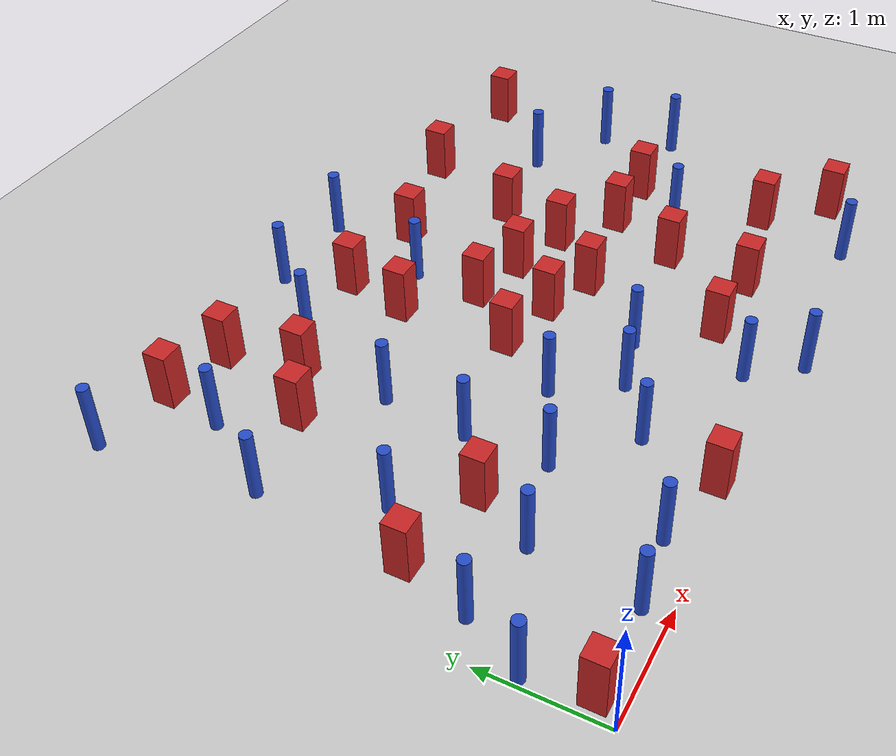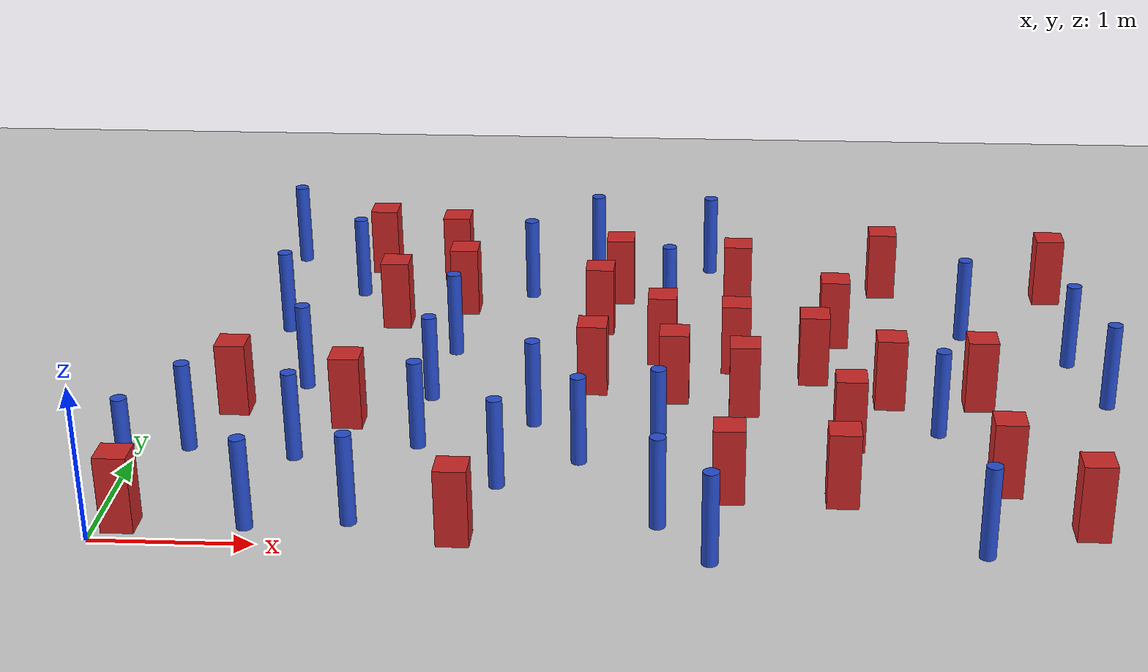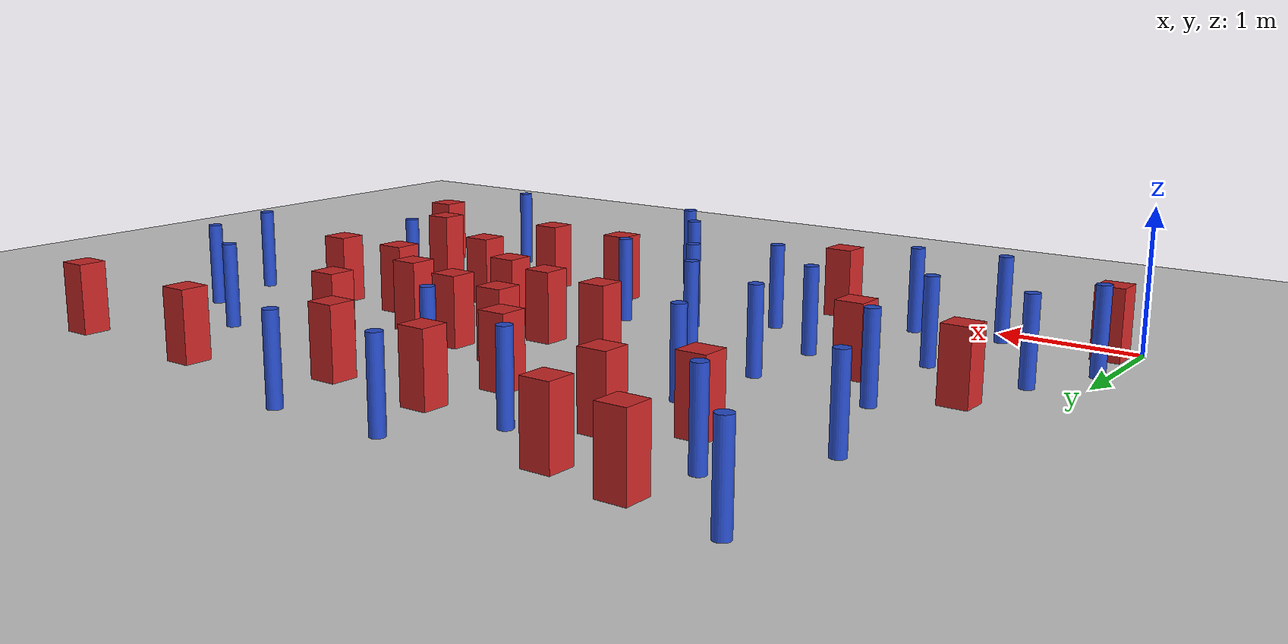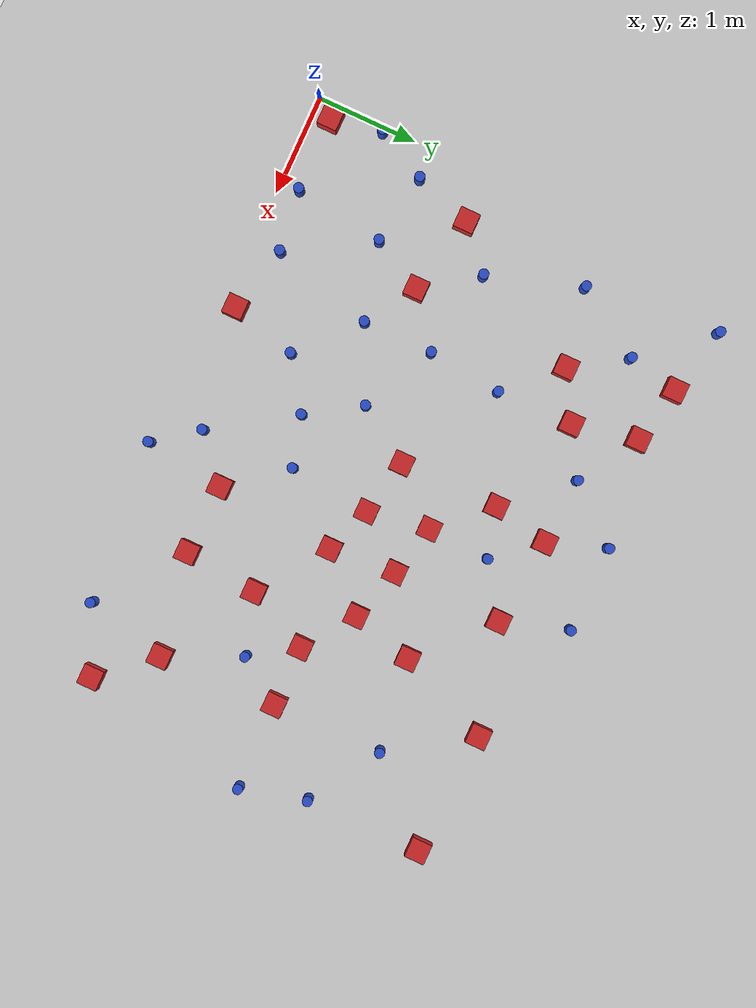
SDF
<sdf version="1.6">
 <world name="default">
  <model name="ground_plane">
   <static>1</static>
   <link name="link">
    <collision name="collision">
     <geometry><plane><normal>0 0 1</normal><size>100 100</size></plane></geometry>
     <surface><friction><ode><mu>100</mu><mu2>50</mu2></ode></friction></surface>
    </collision>
    <visual name="visual">
     <cast_shadows>0</cast_shadows>
     <geometry><plane><normal>0 0 1</normal><size>100 100</size></plane></geometry>
     <material>
      <ambient>1.0 1.0 1.0 1.0</ambient>
      <diffuse>0.8 0.8 0.8 1.0</diffuse>
      <specular>0.01 0.01 0.01 1.000000</specular>
     </material>
    </visual>
   </link>
  </model>
  <model name="pole_obstacle3">
   <static>true</static>
   <pose>1.85166575213 2.73156434735 -9.47619616065e-06 5.49618799737e-07 2.36310414062e-07 -1.55090534798e-07</pose>
   <link name="link">
    <pose>0 0 0.3 0 -0 0</pose>
    <inertial>
     <mass>1</mass>
     <inertia><ixx>0.145833</ixx><ixy>0</ixy><ixz>0</ixz><iyy>0.145833</iyy><iyz>0</iyz><izz>0.125</izz></inertia>
    </inertial>
    <collision name="collision">
     <geometry><cylinder><radius>0.05</radius><length>.6</length></cylinder></geometry>
    </collision>
    <visual name="visual">
     <geometry><cylinder><radius>0.05</radius><length>.6</length></cylinder></geometry>
     <material>
      <script><name>Gazebo/Blue</name><uri>file://media/materials/scripts/gazebo.material</uri></script>
     </material>
    </visual>
   </link>
  </model>
  <model name="pole_obstacle7">
   <static>true</static>
   <pose>3.62072664661 4.30841602605 -9.47619616065e-06 5.49618799738e-07 2.3631041406e-07 -1.55090534801e-07</pose>
   <link name="link">
    <pose>0 0 0.3 0 -0 0</pose>
    <inertial>
     <mass>1</mass>
     <inertia><ixx>0.145833</ixx><ixy>0</ixy><ixz>0</ixz><iyy>0.145833</iyy><iyz>0</iyz><izz>0.125</izz></inertia>
    </inertial>
    <collision name="collision">
     <geometry><cylinder><radius>0.05</radius><length>.6</length></cylinder></geometry>
    </collision>
    <visual name="visual">
     <geometry><cylinder><radius>0.05</radius><length>.6</length></cylinder></geometry>
     <material>
      <script><name>Gazebo/Blue</name><uri>file://media/materials/scripts/gazebo.material</uri></script>
     </material>
    </visual>
   </link>
  </model>
  <model name="pole_obstacle9">
   <static>true</static>
   <pose>5.43425817612 3.14929889037 -9.47619616065e-06 5.49618799738e-07 2.36310414051e-07 -1.55090534805e-07</pose>
   <link name="link">
    <pose>0 0 0.3 0 -0 0</pose>
    <inertial>
     <mass>1</mass>
     <inertia><ixx>0.145833</ixx><ixy>0</ixy><ixz>0</ixz><iyy>0.145833</iyy><iyz>0</iyz><izz>0.125</izz></inertia>
    </inertial>
    <collision name="collision">
     <geometry><cylinder><radius>0.05</radius><length>.6</length></cylinder></geometry>
    </collision>
    <visual name="visual">
     <geometry><cylinder><radius>0.05</radius><length>.6</length></cylinder></geometry>
     <material>
      <script><name>Gazebo/Blue</name><uri>file://media/materials/scripts/gazebo.material</uri></script>
     </material>
    </visual>
   </link>
  </model>
  <model name="pole_obstacle12">
   <static>true</static>
   <pose>0.89969291572 0.201560799494 -9.47619616065e-06 5.49618799737e-07 2.36310414064e-07 -1.55090534797e-07</pose>
   <link name="link">
    <pose>0 0 0.3 0 -0 0</pose>
    <inertial>
     <mass>1</mass>
     <inertia><ixx>0.145833</ixx><ixy>0</ixy><ixz>0</ixz><iyy>0.145833</iyy><iyz>0</iyz><izz>0.125</izz></inertia>
    </inertial>
    <collision name="collision">
     <geometry><cylinder><radius>0.05</radius><length>.6</length></cylinder></geometry>
    </collision>
    <visual name="visual">
     <geometry><cylinder><radius>0.05</radius><length>.6</length></cylinder></geometry>
     <material>
      <script><name>Gazebo/Blue</name><uri>file://media/materials/scripts/gazebo.material</uri></script>
     </material>
    </visual>
   </link>
  </model>
  <model name="pole_obstacle15">
   <static>true</static>
   <pose>5.29335730917 0.0635979002742 -9.47619616065e-06 5.49618799737e-07 2.36310414076e-07 -1.55090534791e-07</pose>
   <link name="link">
    <pose>0 0 0.3 0 -0 0</pose>
    <inertial>
     <mass>1</mass>
     <inertia><ixx>0.145833</ixx><ixy>0</ixy><ixz>0</ixz><iyy>0.145833</iyy><iyz>0</iyz><izz>0.125</izz></inertia>
    </inertial>
    <collision name="collision">
     <geometry><cylinder><radius>0.05</radius><length>.6</length></cylinder></geometry>
    </collision>
    <visual name="visual">
     <geometry><cylinder><radius>0.05</radius><length>.6</length></cylinder></geometry>
     <material>
      <script><name>Gazebo/Blue</name><uri>file://media/materials/scripts/gazebo.material</uri></script>
     </material>
    </visual>
   </link>
  </model>
  <model name="pole_obstacle16">
   <static>true</static>
   <pose>5.1453625678 1.60697496365 -9.47619616065e-06 5.49618799738e-07 2.36310414071e-07 -1.55090534796e-07</pose>
   <link name="link">
    <pose>0 0 0.3 0 -0 0</pose>
    <inertial>
     <mass>1</mass>
     <inertia><ixx>0.145833</ixx><ixy>0</ixy><ixz>0</ixz><iyy>0.145833</iyy><iyz>0</iyz><izz>0.125</izz></inertia>
    </inertial>
    <collision name="collision">
     <geometry><cylinder><radius>0.05</radius><length>.6</length></cylinder></geometry>
    </collision>
    <visual name="visual">
     <geometry><cylinder><radius>0.05</radius><length>.6</length></cylinder></geometry>
     <material>
      <script><name>Gazebo/Blue</name><uri>file://media/materials/scripts/gazebo.material</uri></script>
     </material>
    </visual>
   </link>
  </model>
  <model name="pole_obstacle24">
   <static>true</static>
   <pose>3.36074858885 0.331880408276 -9.47619616065e-06 5.49618799738e-07 2.36310414074e-07 -1.55090534794e-07</pose>
   <link name="link">
    <pose>0 0 0.3 0 -0 0</pose>
    <inertial>
     <mass>1</mass>
     <inertia><ixx>0.145833</ixx><ixy>0</ixy><ixz>0</ixz><iyy>0.145833</iyy><iyz>0</iyz><izz>0.125</izz></inertia>
    </inertial>
    <collision name="collision">
     <geometry><cylinder><radius>0.05</radius><length>.6</length></cylinder></geometry>
    </collision>
    <visual name="visual">
     <geometry><cylinder><radius>0.05</radius><length>.6</length></cylinder></geometry>
     <material>
      <script><name>Gazebo/Blue</name><uri>file://media/materials/scripts/gazebo.material</uri></script>
     </material>
    </visual>
   </link>
  </model>
  <model name="pole_obstacle42">
   <static>true</static>
   <pose>2.50089925545 1.64127641111 -9.47619616065e-06 5.49618799737e-07 2.36310414072e-07 -1.55090534793e-07</pose>
   <link name="link">
    <pose>0 0 0.3 0 -0 0</pose>
    <inertial>
     <mass>1</mass>
     <inertia><ixx>0.145833</ixx><ixy>0</ixy><ixz>0</ixz><iyy>0.145833</iyy><iyz>0</iyz><izz>0.125</izz></inertia>
    </inertial>
    <collision name="collision">
     <geometry><cylinder><radius>0.05</radius><length>.6</length></cylinder></geometry>
    </collision>
    <visual name="visual">
     <geometry><cylinder><radius>0.05</radius><length>.6</length></cylinder></geometry>
     <material>
      <script><name>Gazebo/Blue</name><uri>file://media/materials/scripts/gazebo.material</uri></script>
     </material>
    </visual>
   </link>
  </model>
  <model name="square_post_obstacle32">
   <static>true</static>
   <pose>0.502264745412 1.77467506402 -6.11067671241e-07 -5.50515727128e-06 -8.79689657224e-07 2.37013304536e-05</pose>
   <link name="link">
    <pose>0 0 0.25 0 -0 0</pose>
    <inertial>
     <mass>100</mass>
     <inertia>
      <ixx>0.166667</ixx>
      <ixy>0</ixy>
      <ixz>0</ixz>
      <iyy>0.166667</iyy>
      <iyz>0</iyz>
      <izz>0.166667</izz>
     </inertia>
    </inertial>
    <collision name="collision"><geometry><box><size>.2 .2 .5</size></box></geometry></collision>
    <visual name="visual">
     <geometry><box><size>.2 .2 .5</size></box></geometry>
     <material>
      <script><name>Gazebo/Red</name><uri>file://media/materials/scripts/gazebo.material</uri></script>
     </material>
    </visual>
   </link>
  </model>
  <model name="square_post_obstacle35">
   <static>true</static>
   <pose>3.88081174248 1.90441714512 -6.11067671241e-07 -5.50515727128e-06 -8.79689657224e-07 2.37013304536e-05</pose>
   <link name="link">
    <pose>0 0 0.25 0 -0 0</pose>
    <inertial>
     <mass>100</mass>
     <inertia>
      <ixx>0.166667</ixx>
      <ixy>0</ixy>
      <ixz>0</ixz>
      <iyy>0.166667</iyy>
      <iyz>0</iyz>
      <izz>0.166667</izz>
     </inertia>
    </inertial>
    <collision name="collision"><geometry><box><size>.2 .2 .5</size></box></geometry></collision>
    <visual name="visual">
     <geometry><box><size>.2 .2 .5</size></box></geometry>
     <material>
      <script><name>Gazebo/Red</name><uri>file://media/materials/scripts/gazebo.material</uri></script>
     </material>
    </visual>
   </link>
  </model>
  <model name="square_post_obstacle42">
   <static>true</static>
   <pose>1.70059387898 4.1363169118 -6.11067671241e-07 -5.50515727128e-06 -8.79689657224e-07 2.37013304536e-05</pose>
   <link name="link">
    <pose>0 0 0.25 0 -0 0</pose>
    <inertial>
     <mass>100</mass>
     <inertia>
      <ixx>0.166667</ixx>
      <ixy>0</ixy>
      <ixz>0</ixz>
      <iyy>0.166667</iyy>
      <iyz>0</iyz>
      <izz>0.166667</izz>
     </inertia>
    </inertial>
    <collision name="collision"><geometry><box><size>.2 .2 .5</size></box></geometry></collision>
    <visual name="visual">
     <geometry><box><size>.2 .2 .5</size></box></geometry>
     <material>
      <script><name>Gazebo/Red</name><uri>file://media/materials/scripts/gazebo.material</uri></script>
     </material>
    </visual>
   </link>
  </model>
  <model name="square_post_obstacle44">
   <static>true</static>
   <pose>6.12530218838 3.87353453013 -6.11067671241e-07 -5.50515727128e-06 -8.79689657224e-07 2.37013304536e-05</pose>
   <link name="link">
    <pose>0 0 0.25 0 -0 0</pose>
    <inertial>
     <mass>100</mass>
     <inertia>
      <ixx>0.166667</ixx>
      <ixy>0</ixy>
      <ixz>0</ixz>
      <iyy>0.166667</iyy>
      <iyz>0</iyz>
      <izz>0.166667</izz>
     </inertia>
    </inertial>
    <collision name="collision"><geometry><box><size>.2 .2 .5</size></box></geometry></collision>
    <visual name="visual">
     <geometry><box><size>.2 .2 .5</size></box></geometry>
     <material>
      <script><name>Gazebo/Red</name><uri>file://media/materials/scripts/gazebo.material</uri></script>
     </material>
    </visual>
   </link>
  </model>
  <model name="pole_obstacle64">
   <static>true</static>
   <pose>1.50956659682 0.284849848708 -9.47619616065e-06 5.49618799737e-07 2.36310414064e-07 -1.55090534799e-07</pose>
   <link name="link">
    <pose>0 0 0.3 0 -0 0</pose>
    <inertial>
     <mass>1</mass>
     <inertia><ixx>0.145833</ixx><ixy>0</ixy><ixz>0</ixz><iyy>0.145833</iyy><iyz>0</iyz><izz>0.125</izz></inertia>
    </inertial>
    <collision name="collision">
     <geometry><cylinder><radius>0.05</radius><length>.6</length></cylinder></geometry>
    </collision>
    <visual name="visual">
     <geometry><cylinder><radius>0.05</radius><length>.6</length></cylinder></geometry>
     <material>
      <script><name>Gazebo/Blue</name><uri>file://media/materials/scripts/gazebo.material</uri></script>
     </material>
    </visual>
   </link>
  </model>
  <model name="square_post_obstacle50">
   <static>true</static>
   <pose>3.40953994473 2.07450680071 -6.11067671241e-07 -5.50515727128e-06 -8.79689657224e-07 2.37013304536e-05</pose>
   <link name="link">
    <pose>0 0 0.25 0 -0 0</pose>
    <inertial>
     <mass>100</mass>
     <inertia>
      <ixx>0.166667</ixx>
      <ixy>0</ixy>
      <ixz>0</ixz>
      <iyy>0.166667</iyy>
      <iyz>0</iyz>
      <izz>0.166667</izz>
     </inertia>
    </inertial>
    <collision name="collision"><geometry><box><size>.2 .2 .5</size></box></geometry></collision>
    <visual name="visual">
     <geometry><box><size>.2 .2 .5</size></box></geometry>
     <material>
      <script><name>Gazebo/Red</name><uri>file://media/materials/scripts/gazebo.material</uri></script>
     </material>
    </visual>
   </link>
  </model>
  <model name="square_post_obstacle52">
   <static>true</static>
   <pose>1.36848044522 3.22194869639 -6.11067671241e-07 -5.50515727128e-06 -8.79689657224e-07 2.37013304536e-05</pose>
   <link name="link">
    <pose>0 0 0.25 0 -0 0</pose>
    <inertial>
     <mass>100</mass>
     <inertia>
      <ixx>0.166667</ixx>
      <ixy>0</ixy>
      <ixz>0</ixz>
      <iyy>0.166667</iyy>
      <iyz>0</iyz>
      <izz>0.166667</izz>
     </inertia>
    </inertial>
    <collision name="collision"><geometry><box><size>.2 .2 .5</size></box></geometry></collision>
    <visual name="visual">
     <geometry><box><size>.2 .2 .5</size></box></geometry>
     <material>
      <script><name>Gazebo/Red</name><uri>file://media/materials/scripts/gazebo.material</uri></script>
     </material>
    </visual>
   </link>
  </model>
  <model name="square_post_obstacle56">
   <static>true</static>
   <pose>4.90300308313 3.94071708463 -6.11067671241e-07 -5.50515727128e-06 -8.79689657224e-07 2.37013304536e-05</pose>
   <link name="link">
    <pose>0 0 0.25 0 -0 0</pose>
    <inertial>
     <mass>100</mass>
     <inertia>
      <ixx>0.166667</ixx>
      <ixy>0</ixy>
      <ixz>0</ixz>
      <iyy>0.166667</iyy>
      <iyz>0</iyz>
      <izz>0.166667</izz>
     </inertia>
    </inertial>
    <collision name="collision"><geometry><box><size>.2 .2 .5</size></box></geometry></collision>
    <visual name="visual">
     <geometry><box><size>.2 .2 .5</size></box></geometry>
     <material>
      <script><name>Gazebo/Red</name><uri>file://media/materials/scripts/gazebo.material</uri></script>
     </material>
    </visual>
   </link>
  </model>
  <model name="pole_obstacle71">
   <static>true</static>
   <pose>0.903866674011 2.13763635331 -9.47619616065e-06 5.49618799737e-07 2.36310414066e-07 -1.55090534797e-07</pose>
   <link name="link">
    <pose>0 0 0.3 0 -0 0</pose>
    <inertial>
     <mass>1</mass>
     <inertia><ixx>0.145833</ixx><ixy>0</ixy><ixz>0</ixz><iyy>0.145833</iyy><iyz>0</iyz><izz>0.125</izz></inertia>
    </inertial>
    <collision name="collision">
     <geometry><cylinder><radius>0.05</radius><length>.6</length></cylinder></geometry>
    </collision>
    <visual name="visual">
     <geometry><cylinder><radius>0.05</radius><length>.6</length></cylinder></geometry>
     <material>
      <script><name>Gazebo/Blue</name><uri>file://media/materials/scripts/gazebo.material</uri></script>
     </material>
    </visual>
   </link>
  </model>
  <model name="pole_obstacle72">
   <static>true</static>
   <pose>2.34691807548 0.785220670978 -9.47619616065e-06 5.49618799738e-07 2.36310414075e-07 -1.55090534793e-07</pose>
   <link name="link">
    <pose>0 0 0.3 0 -0 0</pose>
    <inertial>
     <mass>1</mass>
     <inertia><ixx>0.145833</ixx><ixy>0</ixy><ixz>0</ixz><iyy>0.145833</iyy><iyz>0</iyz><izz>0.125</izz></inertia>
    </inertial>
    <collision name="collision">
     <geometry><cylinder><radius>0.05</radius><length>.6</length></cylinder></geometry>
    </collision>
    <visual name="visual">
     <geometry><cylinder><radius>0.05</radius><length>.6</length></cylinder></geometry>
     <material>
      <script><name>Gazebo/Blue</name><uri>file://media/materials/scripts/gazebo.material</uri></script>
     </material>
    </visual>
   </link>
  </model>
  <model name="square_post_obstacle74">
   <static>true</static>
   <pose>2.16711651612 0.123039558075 -6.11067671241e-07 -5.50515727128e-06 -8.79689657224e-07 2.37013304536e-05</pose>
   <link name="link">
    <pose>0 0 0.25 0 -0 0</pose>
    <inertial>
     <mass>100</mass>
     <inertia>
      <ixx>0.166667</ixx>
      <ixy>0</ixy>
      <ixz>0</ixz>
      <iyy>0.166667</iyy>
      <iyz>0</iyz>
      <izz>0.166667</izz>
     </inertia>
    </inertial>
    <collision name="collision"><geometry><box><size>.2 .2 .5</size></box></geometry></collision>
    <visual name="visual">
     <geometry><box><size>.2 .2 .5</size></box></geometry>
     <material>
      <script><name>Gazebo/Red</name><uri>file://media/materials/scripts/gazebo.material</uri></script>
     </material>
    </visual>
   </link>
  </model>
  <model name="square_post_obstacle80">
   <static>true</static>
   <pose>4.47783165921 0.68744371409 -6.11067671241e-07 -5.50515727128e-06 -8.79689657224e-07 2.37013304536e-05</pose>
   <link name="link">
    <pose>0 0 0.25 0 -0 0</pose>
    <inertial>
     <mass>100</mass>
     <inertia>
      <ixx>0.166667</ixx>
      <ixy>0</ixy>
      <ixz>0</ixz>
      <iyy>0.166667</iyy>
      <iyz>0</iyz>
      <izz>0.166667</izz>
     </inertia>
    </inertial>
    <collision name="collision"><geometry><box><size>.2 .2 .5</size></box></geometry></collision>
    <visual name="visual">
     <geometry><box><size>.2 .2 .5</size></box></geometry>
     <material>
      <script><name>Gazebo/Red</name><uri>file://media/materials/scripts/gazebo.material</uri></script>
     </material>
    </visual>
   </link>
  </model>
  <model name="pole_obstacle90">
   <static>true</static>
   <pose>1.77856380262 1.99485083746 -9.47619616065e-06 5.49618799737e-07 2.36310414059e-07 -1.55090534801e-07</pose>
   <link name="link">
    <pose>0 0 0.3 0 -0 0</pose>
    <inertial>
     <mass>1</mass>
     <inertia><ixx>0.145833</ixx><ixy>0</ixy><ixz>0</ixz><iyy>0.145833</iyy><iyz>0</iyz><izz>0.125</izz></inertia>
    </inertial>
    <collision name="collision">
     <geometry><cylinder><radius>0.05</radius><length>.6</length></cylinder></geometry>
    </collision>
    <visual name="visual">
     <geometry><cylinder><radius>0.05</radius><length>.6</length></cylinder></geometry>
     <material>
      <script><name>Gazebo/Blue</name><uri>file://media/materials/scripts/gazebo.material</uri></script>
     </material>
    </visual>
   </link>
  </model>
  <model name="square_post_obstacle88">
   <static>true</static>
   <pose>4.51564150488 3.01755973793 -6.11067671241e-07 -5.50515727128e-06 -8.79689657224e-07 2.37013304536e-05</pose>
   <link name="link">
    <pose>0 0 0.25 0 -0 0</pose>
    <inertial>
     <mass>100</mass>
     <inertia>
      <ixx>0.166667</ixx>
      <ixy>0</ixy>
      <ixz>0</ixz>
      <iyy>0.166667</iyy>
      <iyz>0</iyz>
      <izz>0.166667</izz>
     </inertia>
    </inertial>
    <collision name="collision"><geometry><box><size>.2 .2 .5</size></box></geometry></collision>
    <visual name="visual">
     <geometry><box><size>.2 .2 .5</size></box></geometry>
     <material>
      <script><name>Gazebo/Red</name><uri>file://media/materials/scripts/gazebo.material</uri></script>
     </material>
    </visual>
   </link>
  </model>
  <model name="square_post_obstacle93">
   <static>true</static>
   <pose>3.30949815717 2.68529134067 -6.11067671241e-07 -5.50515727128e-06 -8.79689657224e-07 2.37013304536e-05</pose>
   <link name="link">
    <pose>0 0 0.25 0 -0 0</pose>
    <inertial>
     <mass>100</mass>
     <inertia>
      <ixx>0.166667</ixx>
      <ixy>0</ixy>
      <ixz>0</ixz>
      <iyy>0.166667</iyy>
      <iyz>0</iyz>
      <izz>0.166667</izz>
     </inertia>
    </inertial>
    <collision name="collision"><geometry><box><size>.2 .2 .5</size></box></geometry></collision>
    <visual name="visual">
     <geometry><box><size>.2 .2 .5</size></box></geometry>
     <material>
      <script><name>Gazebo/Red</name><uri>file://media/materials/scripts/gazebo.material</uri></script>
     </material>
    </visual>
   </link>
  </model>
  <model name="square_post_obstacle97">
   <static>true</static>
   <pose>3.83017717057 3.65414301223 -6.11067671241e-07 -5.50515727128e-06 -8.79689657224e-07 2.37013304536e-05</pose>
   <link name="link">
    <pose>0 0 0.25 0 -0 0</pose>
    <inertial>
     <mass>100</mass>
     <inertia>
      <ixx>0.166667</ixx>
      <ixy>0</ixy>
      <ixz>0</ixz>
      <iyy>0.166667</iyy>
      <iyz>0</iyz>
      <izz>0.166667</izz>
     </inertia>
    </inertial>
    <collision name="collision"><geometry><box><size>.2 .2 .5</size></box></geometry></collision>
    <visual name="visual">
     <geometry><box><size>.2 .2 .5</size></box></geometry>
     <material>
      <script><name>Gazebo/Red</name><uri>file://media/materials/scripts/gazebo.material</uri></script>
     </material>
    </visual>
   </link>
  </model>
  <model name="square_post_obstacle105">
   <static>true</static>
   <pose>4.84945778295 2.04789454458 -6.11067671241e-07 -5.50515727128e-06 -8.79689657224e-07 2.37013304536e-05</pose>
   <link name="link">
    <pose>0 0 0.25 0 -0 0</pose>
    <inertial>
     <mass>100</mass>
     <inertia>
      <ixx>0.166667</ixx>
      <ixy>0</ixy>
      <ixz>0</ixz>
      <iyy>0.166667</iyy>
      <iyz>0</iyz>
      <izz>0.166667</izz>
     </inertia>
    </inertial>
    <collision name="collision"><geometry><box><size>.2 .2 .5</size></box></geometry></collision>
    <visual name="visual">
     <geometry><box><size>.2 .2 .5</size></box></geometry>
     <material>
      <script><name>Gazebo/Red</name><uri>file://media/materials/scripts/gazebo.material</uri></script>
     </material>
    </visual>
   </link>
  </model>
  <model name="square_post_obstacle106">
   <static>true</static>
   <pose>3.78203102758 0.707435830214 -6.11067671241e-07 -5.50515727128e-06 -8.79689657224e-07 2.37013304536e-05</pose>
   <link name="link">
    <pose>0 0 0.25 0 -0 0</pose>
    <inertial>
     <mass>100</mass>
     <inertia>
      <ixx>0.166667</ixx>
      <ixy>0</ixy>
      <ixz>0</ixz>
      <iyy>0.166667</iyy>
      <iyz>0</iyz>
      <izz>0.166667</izz>
     </inertia>
    </inertial>
    <collision name="collision"><geometry><box><size>.2 .2 .5</size></box></geometry></collision>
    <visual name="visual">
     <geometry><box><size>.2 .2 .5</size></box></geometry>
     <material>
      <script><name>Gazebo/Red</name><uri>file://media/materials/scripts/gazebo.material</uri></script>
     </material>
    </visual>
   </link>
  </model>
  <model name="pole_obstacle112">
   <static>true</static>
   <pose>1.02855767158 3.74360686626 -9.47619616065e-06 5.49618799737e-07 2.36310414062e-07 -1.55090534798e-07</pose>
   <link name="link">
    <pose>0 0 0.3 0 -0 0</pose>
    <inertial>
     <mass>1</mass>
     <inertia><ixx>0.145833</ixx><ixy>0</ixy><ixz>0</ixz><iyy>0.145833</iyy><iyz>0</iyz><izz>0.125</izz></inertia>
    </inertial>
    <collision name="collision">
     <geometry><cylinder><radius>0.05</radius><length>.6</length></cylinder></geometry>
    </collision>
    <visual name="visual">
     <geometry><cylinder><radius>0.05</radius><length>.6</length></cylinder></geometry>
     <material>
      <script><name>Gazebo/Blue</name><uri>file://media/materials/scripts/gazebo.material</uri></script>
     </material>
    </visual>
   </link>
  </model>
  <model name="square_post_obstacle111">
   <static>true</static>
   <pose>4.55228413489 1.42312954377 -6.11067671241e-07 -5.50515727128e-06 -8.79689657224e-07 2.37013304536e-05</pose>
   <link name="link">
    <pose>0 0 0.25 0 -0 0</pose>
    <inertial>
     <mass>100</mass>
     <inertia>
      <ixx>0.166667</ixx>
      <ixy>0</ixy>
      <ixz>0</ixz>
      <iyy>0.166667</iyy>
      <iyz>0</iyz>
      <izz>0.166667</izz>
     </inertia>
    </inertial>
    <collision name="collision"><geometry><box><size>.2 .2 .5</size></box></geometry></collision>
    <visual name="visual">
     <geometry><box><size>.2 .2 .5</size></box></geometry>
     <material>
      <script><name>Gazebo/Red</name><uri>file://media/materials/scripts/gazebo.material</uri></script>
     </material>
    </visual>
   </link>
  </model>
  <model name="pole_obstacle122">
   <static>true</static>
   <pose>1.02105703765 1.09854720468 -9.47619616065e-06 5.49618799738e-07 2.36310414068e-07 -1.55090534794e-07</pose>
   <link name="link">
    <pose>0 0 0.3 0 -0 0</pose>
    <inertial>
     <mass>1</mass>
     <inertia><ixx>0.145833</ixx><ixy>0</ixy><ixz>0</ixz><iyy>0.145833</iyy><iyz>0</iyz><izz>0.125</izz></inertia>
    </inertial>
    <collision name="collision">
     <geometry><cylinder><radius>0.05</radius><length>.6</length></cylinder></geometry>
    </collision>
    <visual name="visual">
     <geometry><cylinder><radius>0.05</radius><length>.6</length></cylinder></geometry>
     <material>
      <script><name>Gazebo/Blue</name><uri>file://media/materials/scripts/gazebo.material</uri></script>
     </material>
    </visual>
   </link>
  </model>
  <model name="pole_obstacle127">
   <static>true</static>
   <pose>0.319514524931 1.19867326952 -9.47619616065e-06 5.49618799738e-07 2.3631041406e-07 -1.550905348e-07</pose>
   <link name="link">
    <pose>0 0 0.3 0 -0 0</pose>
    <inertial>
     <mass>1</mass>
     <inertia><ixx>0.145833</ixx><ixy>0</ixy><ixz>0</ixz><iyy>0.145833</iyy><iyz>0</iyz><izz>0.125</izz></inertia>
    </inertial>
    <collision name="collision">
     <geometry><cylinder><radius>0.05</radius><length>.6</length></cylinder></geometry>
    </collision>
    <visual name="visual">
     <geometry><cylinder><radius>0.05</radius><length>.6</length></cylinder></geometry>
     <material>
      <script><name>Gazebo/Blue</name><uri>file://media/materials/scripts/gazebo.material</uri></script>
     </material>
    </visual>
   </link>
  </model>
  <model name="pole_obstacle128">
   <static>true</static>
   <pose>3.33217006479 1.26184409566 -9.47619616065e-06 5.49618799737e-07 2.36310414072e-07 -1.55090534793e-07</pose>
   <link name="link">
    <pose>0 0 0.3 0 -0 0</pose>
    <inertial>
     <mass>1</mass>
     <inertia><ixx>0.145833</ixx><ixy>0</ixy><ixz>0</ixz><iyy>0.145833</iyy><iyz>0</iyz><izz>0.125</izz></inertia>
    </inertial>
    <collision name="collision">
     <geometry><cylinder><radius>0.05</radius><length>.6</length></cylinder></geometry>
    </collision>
    <visual name="visual">
     <geometry><cylinder><radius>0.05</radius><length>.6</length></cylinder></geometry>
     <material>
      <script><name>Gazebo/Blue</name><uri>file://media/materials/scripts/gazebo.material</uri></script>
     </material>
    </visual>
   </link>
  </model>
  <model name="square_post_obstacle131">
   <static>true</static>
   <pose>4.35290996386 2.40289748283 -6.11067671241e-07 -5.50515727128e-06 -8.79689657224e-07 2.37013304536e-05</pose>
   <link name="link">
    <pose>0 0 0.25 0 -0 0</pose>
    <inertial>
     <mass>100</mass>
     <inertia>
      <ixx>0.166667</ixx>
      <ixy>0</ixy>
      <ixz>0</ixz>
      <iyy>0.166667</iyy>
      <iyz>0</iyz>
      <izz>0.166667</izz>
     </inertia>
    </inertial>
    <collision name="collision"><geometry><box><size>.2 .2 .5</size></box></geometry></collision>
    <visual name="visual">
     <geometry><box><size>.2 .2 .5</size></box></geometry>
     <material>
      <script><name>Gazebo/Red</name><uri>file://media/materials/scripts/gazebo.material</uri></script>
     </material>
    </visual>
   </link>
  </model>
  <model name="pole_obstacle136">
   <static>true</static>
   <pose>3.33722608248 3.30761699883 -9.47619616065e-06 5.49618799737e-07 2.36310414051e-07 -1.55090534807e-07</pose>
   <link name="link">
    <pose>0 0 0.3 0 -0 0</pose>
    <inertial>
     <mass>1</mass>
     <inertia><ixx>0.145833</ixx><ixy>0</ixy><ixz>0</ixz><iyy>0.145833</iyy><iyz>0</iyz><izz>0.125</izz></inertia>
    </inertial>
    <collision name="collision">
     <geometry><cylinder><radius>0.05</radius><length>.6</length></cylinder></geometry>
    </collision>
    <visual name="visual">
     <geometry><cylinder><radius>0.05</radius><length>.6</length></cylinder></geometry>
     <material>
      <script><name>Gazebo/Blue</name><uri>file://media/materials/scripts/gazebo.material</uri></script>
     </material>
    </visual>
   </link>
  </model>
  <model name="pole_obstacle139">
   <static>true</static>
   <pose>0.0615420245437 0.689907572316 -9.47619616065e-06 5.49618799737e-07 2.36310414057e-07 -1.55090534801e-07</pose>
   <link name="link">
    <pose>0 0 0.3 0 -0 0</pose>
    <inertial>
     <mass>1</mass>
     <inertia><ixx>0.145833</ixx><ixy>0</ixy><ixz>0</ixz><iyy>0.145833</iyy><iyz>0</iyz><izz>0.125</izz></inertia>
    </inertial>
    <collision name="collision">
     <geometry><cylinder><radius>0.05</radius><length>.6</length></cylinder></geometry>
    </collision>
    <visual name="visual">
     <geometry><cylinder><radius>0.05</radius><length>.6</length></cylinder></geometry>
     <material>
      <script><name>Gazebo/Blue</name><uri>file://media/materials/scripts/gazebo.material</uri></script>
     </material>
    </visual>
   </link>
  </model>
  <model name="pole_obstacle146">
   <static>true</static>
   <pose>0.597016389772 3.06711406315 -9.47619616065e-06 5.49618799737e-07 2.36310414066e-07 -1.55090534797e-07</pose>
   <link name="link">
    <pose>0 0 0.3 0 -0 0</pose>
    <inertial>
     <mass>1</mass>
     <inertia><ixx>0.145833</ixx><ixy>0</ixy><ixz>0</ixz><iyy>0.145833</iyy><iyz>0</iyz><izz>0.125</izz></inertia>
    </inertial>
    <collision name="collision">
     <geometry><cylinder><radius>0.05</radius><length>.6</length></cylinder></geometry>
    </collision>
    <visual name="visual">
     <geometry><cylinder><radius>0.05</radius><length>.6</length></cylinder></geometry>
     <material>
      <script><name>Gazebo/Blue</name><uri>file://media/materials/scripts/gazebo.material</uri></script>
     </material>
    </visual>
   </link>
  </model>
  <model name="pole_obstacle151">
   <static>true</static>
   <pose>2.76243702368 4.31079145375 -9.47619616065e-06 5.49618799738e-07 2.3631041406e-07 -1.55090534801e-07</pose>
   <link name="link">
    <pose>0 0 0.3 0 -0 0</pose>
    <inertial>
     <mass>1</mass>
     <inertia><ixx>0.145833</ixx><ixy>0</ixy><ixz>0</ixz><iyy>0.145833</iyy><iyz>0</iyz><izz>0.125</izz></inertia>
    </inertial>
    <collision name="collision">
     <geometry><cylinder><radius>0.05</radius><length>.6</length></cylinder></geometry>
    </collision>
    <visual name="visual">
     <geometry><cylinder><radius>0.05</radius><length>.6</length></cylinder></geometry>
     <material>
      <script><name>Gazebo/Blue</name><uri>file://media/materials/scripts/gazebo.material</uri></script>
     </material>
    </visual>
   </link>
  </model>
  <model name="pole_obstacle153">
   <static>true</static>
   <pose>2.83360598499 1.12431085471 -9.47619616065e-06 5.49618799737e-07 2.36310414072e-07 -1.55090534793e-07</pose>
   <link name="link">
    <pose>0 0 0.3 0 -0 0</pose>
    <inertial>
     <mass>1</mass>
     <inertia><ixx>0.145833</ixx><ixy>0</ixy><ixz>0</ixz><iyy>0.145833</iyy><iyz>0</iyz><izz>0.125</izz></inertia>
    </inertial>
    <collision name="collision">
     <geometry><cylinder><radius>0.05</radius><length>.6</length></cylinder></geometry>
    </collision>
    <visual name="visual">
     <geometry><cylinder><radius>0.05</radius><length>.6</length></cylinder></geometry>
     <material>
      <script><name>Gazebo/Blue</name><uri>file://media/materials/scripts/gazebo.material</uri></script>
     </material>
    </visual>
   </link>
  </model>
  <model name="square_post_obstacle151">
   <static>true</static>
   <pose>1.12968207402 4.25360609874 -6.11067671241e-07 -5.50515727128e-06 -8.79689657224e-07 2.37013304536e-05</pose>
   <link name="link">
    <pose>0 0 0.25 0 -0 0</pose>
    <inertial>
     <mass>100</mass>
     <inertia>
      <ixx>0.166667</ixx>
      <ixy>0</ixy>
      <ixz>0</ixz>
      <iyy>0.166667</iyy>
      <iyz>0</iyz>
      <izz>0.166667</izz>
     </inertia>
    </inertial>
    <collision name="collision"><geometry><box><size>.2 .2 .5</size></box></geometry></collision>
    <visual name="visual">
     <geometry><box><size>.2 .2 .5</size></box></geometry>
     <material>
      <script><name>Gazebo/Red</name><uri>file://media/materials/scripts/gazebo.material</uri></script>
     </material>
    </visual>
   </link>
  </model>
  <model name="pole_obstacle159">
   <static>true</static>
   <pose>1.78290583499 1.29614136828 -9.47619616065e-06 5.49618799737e-07 2.36310414065e-07 -1.55090534798e-07</pose>
   <link name="link">
    <pose>0 0 0.3 0 -0 0</pose>
    <inertial>
     <mass>1</mass>
     <inertia><ixx>0.145833</ixx><ixy>0</ixy><ixz>0</ixz><iyy>0.145833</iyy><iyz>0</iyz><izz>0.125</izz></inertia>
    </inertial>
    <collision name="collision">
     <geometry><cylinder><radius>0.05</radius><length>.6</length></cylinder></geometry>
    </collision>
    <visual name="visual">
     <geometry><cylinder><radius>0.05</radius><length>.6</length></cylinder></geometry>
     <material>
      <script><name>Gazebo/Blue</name><uri>file://media/materials/scripts/gazebo.material</uri></script>
     </material>
    </visual>
   </link>
  </model>
  <model name="square_post_obstacle160">
   <static>true</static>
   <pose>3.82262843563 2.56229354689 -6.11067671241e-07 -5.50515727128e-06 -8.79689657224e-07 2.37013304536e-05</pose>
   <link name="link">
    <pose>0 0 0.25 0 -0 0</pose>
    <inertial>
     <mass>100</mass>
     <inertia>
      <ixx>0.166667</ixx>
      <ixy>0</ixy>
      <ixz>0</ixz>
      <iyy>0.166667</iyy>
      <iyz>0</iyz>
      <izz>0.166667</izz>
     </inertia>
    </inertial>
    <collision name="collision"><geometry><box><size>.2 .2 .5</size></box></geometry></collision>
    <visual name="visual">
     <geometry><box><size>.2 .2 .5</size></box></geometry>
     <material>
      <script><name>Gazebo/Red</name><uri>file://media/materials/scripts/gazebo.material</uri></script>
     </material>
    </visual>
   </link>
  </model>
  <model name="pole_obstacle166">
   <static>true</static>
   <pose>3.67988149112 -0.0827576635663 -9.47619616065e-06 5.49618799737e-07 2.36310414066e-07 -1.55090534798e-07</pose>
   <link name="link">
    <pose>0 0 0.3 0 -0 0</pose>
    <inertial>
     <mass>1</mass>
     <inertia><ixx>0.145833</ixx><ixy>0</ixy><ixz>0</ixz><iyy>0.145833</iyy><iyz>0</iyz><izz>0.125</izz></inertia>
    </inertial>
    <collision name="collision">
     <geometry><cylinder><radius>0.05</radius><length>.6</length></cylinder></geometry>
    </collision>
    <visual name="visual">
     <geometry><cylinder><radius>0.05</radius><length>.6</length></cylinder></geometry>
     <material>
      <script><name>Gazebo/Blue</name><uri>file://media/materials/scripts/gazebo.material</uri></script>
     </material>
    </visual>
   </link>
  </model>
  <model name="square_post_obstacle171">
   <static>true</static>
   <pose>1.83428017899 3.49318181618 -6.11067671241e-07 -5.50515727128e-06 -8.79689657224e-07 2.37013304536e-05</pose>
   <link name="link">
    <pose>0 0 0.25 0 -0 0</pose>
    <inertial>
     <mass>100</mass>
     <inertia>
      <ixx>0.166667</ixx>
      <ixy>0</ixy>
      <ixz>0</ixz>
      <iyy>0.166667</iyy>
      <iyz>0</iyz>
      <izz>0.166667</izz>
     </inertia>
    </inertial>
    <collision name="collision"><geometry><box><size>.2 .2 .5</size></box></geometry></collision>
    <visual name="visual">
     <geometry><box><size>.2 .2 .5</size></box></geometry>
     <material>
      <script><name>Gazebo/Red</name><uri>file://media/materials/scripts/gazebo.material</uri></script>
     </material>
    </visual>
   </link>
  </model>
  <model name="square_post_obstacle175">
   <static>true</static>
   <pose>5.44584188792 2.04974494552 -6.11067671241e-07 -5.50515727128e-06 -8.79689657224e-07 2.37013304536e-05</pose>
   <link name="link">
    <pose>0 0 0.25 0 -0 0</pose>
    <inertial>
     <mass>100</mass>
     <inertia>
      <ixx>0.166667</ixx>
      <ixy>0</ixy>
      <ixz>0</ixz>
      <iyy>0.166667</iyy>
      <iyz>0</iyz>
      <izz>0.166667</izz>
     </inertia>
    </inertial>
    <collision name="collision"><geometry><box><size>.2 .2 .5</size></box></geometry></collision>
    <visual name="visual">
     <geometry><box><size>.2 .2 .5</size></box></geometry>
     <material>
      <script><name>Gazebo/Red</name><uri>file://media/materials/scripts/gazebo.material</uri></script>
     </material>
    </visual>
   </link>
  </model>
  <model name="square_post_obstacle179">
   <static>true</static>
   <pose>5.48576686143 0.869706447228 -6.11067671241e-07 -5.50515727128e-06 -8.79689657224e-07 2.37013304536e-05</pose>
   <link name="link">
    <pose>0 0 0.25 0 -0 0</pose>
    <inertial>
     <mass>100</mass>
     <inertia>
      <ixx>0.166667</ixx>
      <ixy>0</ixy>
      <ixz>0</ixz>
      <iyy>0.166667</iyy>
      <iyz>0</iyz>
      <izz>0.166667</izz>
     </inertia>
    </inertial>
    <collision name="collision"><geometry><box><size>.2 .2 .5</size></box></geometry></collision>
    <visual name="visual">
     <geometry><box><size>.2 .2 .5</size></box></geometry>
     <material>
      <script><name>Gazebo/Red</name><uri>file://media/materials/scripts/gazebo.material</uri></script>
     </material>
    </visual>
   </link>
  </model>
  <model name="square_post_obstacle184">
   <static>true</static>
   <pose>1.28428505036 1.60980591324 -6.11067671241e-07 -5.50515727128e-06 -8.79689657224e-07 2.37013304536e-05</pose>
   <link name="link">
    <pose>0 0 0.25 0 -0 0</pose>
    <inertial>
     <mass>100</mass>
     <inertia>
      <ixx>0.166667</ixx>
      <ixy>0</ixy>
      <ixz>0</ixz>
      <iyy>0.166667</iyy>
      <iyz>0</iyz>
      <izz>0.166667</izz>
     </inertia>
    </inertial>
    <collision name="collision"><geometry><box><size>.2 .2 .5</size></box></geometry></collision>
    <visual name="visual">
     <geometry><box><size>.2 .2 .5</size></box></geometry>
     <material>
      <script><name>Gazebo/Red</name><uri>file://media/materials/scripts/gazebo.material</uri></script>
     </material>
    </visual>
   </link>
  </model>
  <model name="square_post_obstacle185">
   <static>true</static>
   <pose>0.15841679275 0.189777530996 -6.11067671241e-07 -5.50515727128e-06 -8.79689657224e-07 2.37013304536e-05</pose>
   <link name="link">
    <pose>0 0 0.25 0 -0 0</pose>
    <inertial>
     <mass>100</mass>
     <inertia>
      <ixx>0.166667</ixx>
      <ixy>0</ixy>
      <ixz>0</ixz>
      <iyy>0.166667</iyy>
      <iyz>0</iyz>
      <izz>0.166667</izz>
     </inertia>
    </inertial>
    <collision name="collision"><geometry><box><size>.2 .2 .5</size></box></geometry></collision>
    <visual name="visual">
     <geometry><box><size>.2 .2 .5</size></box></geometry>
     <material>
      <script><name>Gazebo/Red</name><uri>file://media/materials/scripts/gazebo.material</uri></script>
     </material>
    </visual>
   </link>
  </model>
  <model name="square_post_obstacle188">
   <static>true</static>
   <pose>5.93885457978 0.357810367662 -6.11067671241e-07 -5.50515727128e-06 -8.79689657224e-07 2.37013304536e-05</pose>
   <link name="link">
    <pose>0 0 0.25 0 -0 0</pose>
    <inertial>
     <mass>100</mass>
     <inertia>
      <ixx>0.166667</ixx>
      <ixy>0</ixy>
      <ixz>0</ixz>
      <iyy>0.166667</iyy>
      <iyz>0</iyz>
      <izz>0.166667</izz>
     </inertia>
    </inertial>
    <collision name="collision"><geometry><box><size>.2 .2 .5</size></box></geometry></collision>
    <visual name="visual">
     <geometry><box><size>.2 .2 .5</size></box></geometry>
     <material>
      <script><name>Gazebo/Red</name><uri>file://media/materials/scripts/gazebo.material</uri></script>
     </material>
    </visual>
   </link>
  </model>
  <model name="pole_obstacle187">
   <static>true</static>
   <pose>6.30807260547 2.0741791367 -9.47619616065e-06 5.49618799738e-07 2.36310414051e-07 -1.55090534805e-07</pose>
   <link name="link">
    <pose>0 0 0.3 0 -0 0</pose>
    <inertial>
     <mass>1</mass>
     <inertia><ixx>0.145833</ixx><ixy>0</ixy><ixz>0</ixz><iyy>0.145833</iyy><iyz>0</iyz><izz>0.125</izz></inertia>
    </inertial>
    <collision name="collision">
     <geometry><cylinder><radius>0.05</radius><length>.6</length></cylinder></geometry>
    </collision>
    <visual name="visual">
     <geometry><cylinder><radius>0.05</radius><length>.6</length></cylinder></geometry>
     <material>
      <script><name>Gazebo/Blue</name><uri>file://media/materials/scripts/gazebo.material</uri></script>
     </material>
    </visual>
   </link>
  </model>
  <model name="square_post_obstacle193">
   <static>true</static>
   <pose>2.85430528487 2.18723619572 -6.11067671241e-07 -5.50515727128e-06 -8.79689657224e-07 2.37013304536e-05</pose>
   <link name="link">
    <pose>0 0 0.25 0 -0 0</pose>
    <inertial>
     <mass>100</mass>
     <inertia>
      <ixx>0.166667</ixx>
      <ixy>0</ixy>
      <ixz>0</ixz>
      <iyy>0.166667</iyy>
      <iyz>0</iyz>
      <izz>0.166667</izz>
     </inertia>
    </inertial>
    <collision name="collision"><geometry><box><size>.2 .2 .5</size></box></geometry></collision>
    <visual name="visual">
     <geometry><box><size>.2 .2 .5</size></box></geometry>
     <material>
      <script><name>Gazebo/Red</name><uri>file://media/materials/scripts/gazebo.material</uri></script>
     </material>
    </visual>
   </link>
  </model>
  <model name="square_post_obstacle199">
   <static>true</static>
   <pose>2.8457485905 3.17635508547 -6.11067671241e-07 -5.50515727128e-06 -8.79689657224e-07 2.37013304536e-05</pose>
   <link name="link">
    <pose>0 0 0.25 0 -0 0</pose>
    <inertial>
     <mass>100</mass>
     <inertia>
      <ixx>0.166667</ixx>
      <ixy>0</ixy>
      <ixz>0</ixz>
      <iyy>0.166667</iyy>
      <iyz>0</iyz>
      <izz>0.166667</izz>
     </inertia>
    </inertial>
    <collision name="collision"><geometry><box><size>.2 .2 .5</size></box></geometry></collision>
    <visual name="visual">
     <geometry><box><size>.2 .2 .5</size></box></geometry>
     <material>
      <script><name>Gazebo/Red</name><uri>file://media/materials/scripts/gazebo.material</uri></script>
     </material>
    </visual>
   </link>
  </model>
  <model name="pole_obstacle204">
   <static>true</static>
   <pose>0.456308156257 4.40287882589 -9.47619616065e-06 5.49618799737e-07 2.36310414066e-07 -1.55090534795e-07</pose>
   <link name="link">
    <pose>0 0 0.3 0 -0 0</pose>
    <inertial>
     <mass>1</mass>
     <inertia><ixx>0.145833</ixx><ixy>0</ixy><ixz>0</ixz><iyy>0.145833</iyy><iyz>0</iyz><izz>0.125</izz></inertia>
    </inertial>
    <collision name="collision">
     <geometry><cylinder><radius>0.05</radius><length>.6</length></cylinder></geometry>
    </collision>
    <visual name="visual">
     <geometry><cylinder><radius>0.05</radius><length>.6</length></cylinder></geometry>
     <material>
      <script><name>Gazebo/Blue</name><uri>file://media/materials/scripts/gazebo.material</uri></script>
     </material>
    </visual>
   </link>
  </model>
  <model name="pole_obstacle205">
   <static>true</static>
   <pose>2.30038498712 3.77164267873 -9.47619616065e-06 5.49618799737e-07 2.36310414051e-07 -1.55090534807e-07</pose>
   <link name="link">
    <pose>0 0 0.3 0 -0 0</pose>
    <inertial>
     <mass>1</mass>
     <inertia><ixx>0.145833</ixx><ixy>0</ixy><ixz>0</ixz><iyy>0.145833</iyy><iyz>0</iyz><izz>0.125</izz></inertia>
    </inertial>
    <collision name="collision">
     <geometry><cylinder><radius>0.05</radius><length>.6</length></cylinder></geometry>
    </collision>
    <visual name="visual">
     <geometry><cylinder><radius>0.05</radius><length>.6</length></cylinder></geometry>
     <material>
      <script><name>Gazebo/Blue</name><uri>file://media/materials/scripts/gazebo.material</uri></script>
     </material>
    </visual>
   </link>
  </model>
  <model name="pole_obstacle206">
   <static>true</static>
   <pose>6.13549563011 2.72052585856 -9.47619616065e-06 5.49618799738e-07 2.36310414051e-07 -1.55090534805e-07</pose>
   <link name="link">
    <pose>0 0 0.3 0 -0 0</pose>
    <inertial>
     <mass>1</mass>
     <inertia><ixx>0.145833</ixx><ixy>0</ixy><ixz>0</ixz><iyy>0.145833</iyy><iyz>0</iyz><izz>0.125</izz></inertia>
    </inertial>
    <collision name="collision">
     <geometry><cylinder><radius>0.05</radius><length>.6</length></cylinder></geometry>
    </collision>
    <visual name="visual">
     <geometry><cylinder><radius>0.05</radius><length>.6</length></cylinder></geometry>
     <material>
      <script><name>Gazebo/Blue</name><uri>file://media/materials/scripts/gazebo.material</uri></script>
     </material>
    </visual>
   </link>
  </model>
  <model name="square_post_obstacle213">
   <static>true</static>
   <pose>2.96385149852 3.73842958928 -6.11067671241e-07 -5.50515727128e-06 -8.79689657224e-07 2.37013304536e-05</pose>
   <link name="link">
    <pose>0 0 0.25 0 -0 0</pose>
    <inertial>
     <mass>100</mass>
     <inertia>
      <ixx>0.166667</ixx>
      <ixy>0</ixy>
      <ixz>0</ixz>
      <iyy>0.166667</iyy>
      <iyz>0</iyz>
      <izz>0.166667</izz>
     </inertia>
    </inertial>
    <collision name="collision"><geometry><box><size>.2 .2 .5</size></box></geometry></collision>
    <visual name="visual">
     <geometry><box><size>.2 .2 .5</size></box></geometry>
     <material>
      <script><name>Gazebo/Red</name><uri>file://media/materials/scripts/gazebo.material</uri></script>
     </material>
    </visual>
   </link>
  </model>
 </world>
</sdf>
